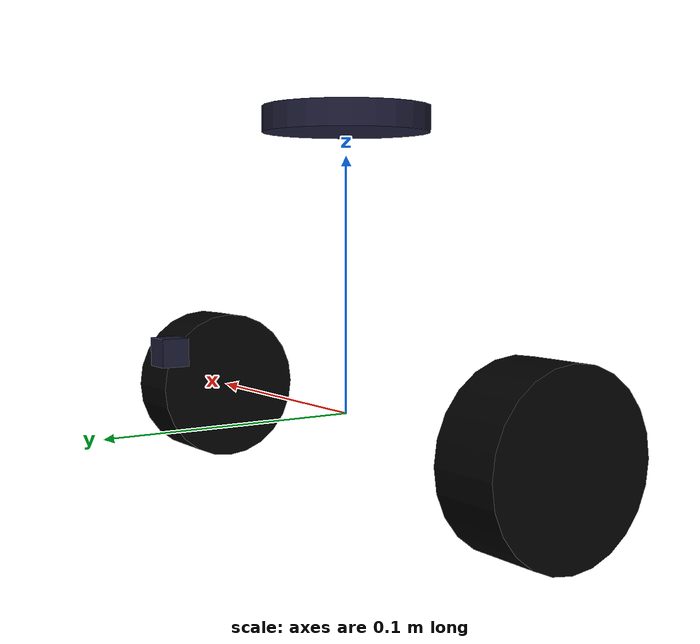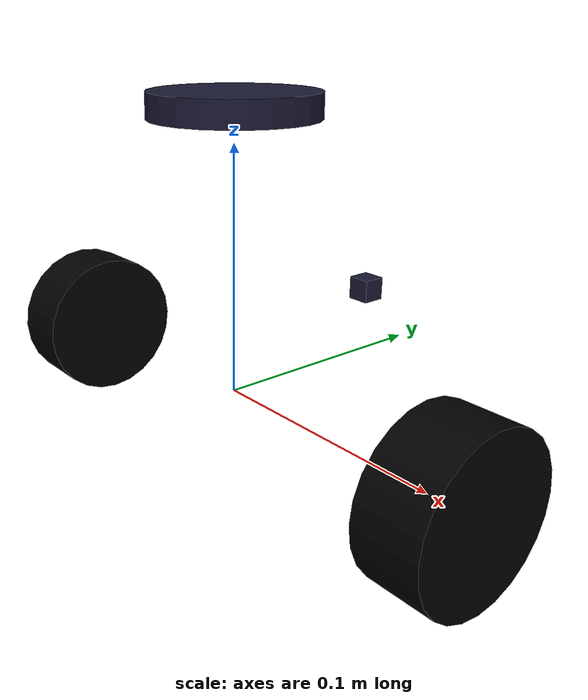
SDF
<?xml version='1.0'?>
<sdf version='1.4'>
	<model name="lilnavi">

		<static>false</static>

		<link name='chassis'>
			<pose>0 0 0 0 0 0</pose>

			<inertial>
				<mass>10</mass>
				<inertia>
					<ixx>0.290179</ixx>
					<iyy>0.355055</iyy>
					<izz>0.400689</izz>
				</inertia>
			</inertial>

			<collision name='collision'>
				<geometry>
					<box>
						<size>.19 .04 .04</size>
					</box>
				</geometry>
			</collision>

			<visual name='visual'>
				<geometry>
					<box>
						<size>.19 .04 .04</size>
					</box>
				</geometry>
				<material> <!-- material -->
					<ambient>77 0 255 1</ambient>
					<diffuse>77 0 255 1</diffuse>
					<specular>0 0 0 0</specular>
					<emissive>0 0 0 1</emissive>
				</material> <!--material -->
			</visual>

			<collision name='baseplate_collision'>
				<pose>0 0 0.022 0 0 0</pose>
				<geometry>
					<box>
						<size>.19 .19 .004</size>
					</box>
				</geometry>
			</collision>

			<visual name='baseplate_visual'>
				<pose>0 0 0.022 0 0 0</pose>
				<geometry>
					<box>
						<size>.19 .19 .004</size>
					</box>
				</geometry>
				<material> <!-- material -->
					<ambient>255 0 0 1</ambient>
					<diffuse>255 0 0 1</diffuse>
					<specular>0 0 0 0</specular>
					<emissive>0 0 0 1</emissive>
				</material> <!--material -->
			</visual>

			<collision name='mid_collision'>
				<pose>0 0 0.0515 0 0 0</pose>
				<geometry>
					<box>
						<size>.12 .12 .055</size>
					</box>
				</geometry>
			</collision>

			<visual name='mid_visual'>
				<pose>0 0 0.0515 0 0 0</pose>
				<geometry>
					<box>
						<size>.12 .12 .055</size>
					</box>
				</geometry>
				<material> <!-- material -->
					<ambient>238 238 81 1</ambient>
					<diffuse>238 238 81 1</diffuse>
					<specular>0 0 0 0</specular>
					<emissive>0 0 0 1</emissive>
				</material> <!--material -->
			</visual>

			<collision name='casterfront_collision'>
				<pose>0 0.0775 0.005 0 0 0</pose>
				<geometry>
					<box>
						<size>0.025 0.025 0.03</size>
					</box>
				</geometry>
			</collision>

			<visual name='casterfront_visual'>
				<pose>0 0.0775 0.005 0 0 0</pose>
				<geometry>
					<box>
						<size>0.025 0.025 0.03</size>
					</box>
				</geometry>
				<material> <!-- material -->
					<ambient>255 183 0 1</ambient>
					<diffuse>255 183 0 1</diffuse>
					<specular>0 0 0 0</specular>
					<emissive>0 0 0 1</emissive>
				</material> <!--material -->
			</visual>

			<collision name='casterwheelfront_collision'>
				<pose>0 0.0775 -0.010 0 0 0</pose>
				<geometry>
					<sphere>
						<radius>0.0225</radius>
					</sphere>
				</geometry>

				<surface>
					<friction>
						<ode>
							<mu>0</mu>
							<mu2>0</mu2>
							<slip1>1.0</slip1>
							<slip2>1.0</slip2>
						</ode>
					</friction>
				</surface>
			</collision>

			<visual name='casterwheelfront_visual'>
				<pose>0 0.0775 -0.010 0 0 0</pose>
				<geometry>
					<sphere>
						<radius>0.0225</radius>
					</sphere>
				</geometry>
				<material> <!-- material -->
					<ambient>0 215 255 1</ambient>
					<diffuse>0 215 255 1</diffuse>
					<specular>0 0 0 0</specular>
					<emissive>0 0 0 1</emissive>
				</material> <!--material -->
			</visual>

			<collision name='casterback_collision'>
				<pose>0 -0.0775 0.005 0 0 0</pose>
				<geometry>
					<box>
						<size>0.025 0.025 0.03</size>
					</box>
				</geometry>
			</collision>

			<visual name='casterback_visual'>
				<pose>0 -0.0775 0.005 0 0 0</pose>
				<geometry>
					<box>
						<size>0.025 0.025 0.03</size>
					</box>
				</geometry>
				<material> <!-- material -->
					<ambient>255 183 0 1</ambient>
					<diffuse>255 183 0 1</diffuse>
					<specular>0 0 0 0</specular>
					<emissive>0 0 0 1</emissive>
				</material> <!--material -->
			</visual>

			<collision name='casterwheelback_collision'>
				<pose>0 -0.0775 -0.010 0 0 0</pose>
				<geometry>
					<sphere>
						<radius>0.0225</radius>
					</sphere>
				</geometry>

				<surface>
					<friction>
						<ode>
							<mu>0</mu>
							<mu2>0</mu2>
							<slip1>1.0</slip1>
							<slip2>1.0</slip2>
						</ode>
					</friction>
				</surface>
			</collision>

			<visual name='casterwheelback_visual'>
				<pose>0 -0.0775 -0.010 0 0 0</pose>
				<geometry>
					<sphere>
						<radius>0.0225</radius>
					</sphere>
				</geometry>
				<material> <!-- material -->
					<ambient>0 215 255 1</ambient>
					<diffuse>0 215 255 1</diffuse>
					<specular>0 0 0 0</specular>
					<emissive>0 0 0 1</emissive>
				</material> <!--material -->
			</visual>

			<collision name="lidarsup_collision">
				<pose>0 0 0.092 0 0 0</pose>
				<geometry>
					<cylinder>
						<radius>0.0325</radius>
						<length>0.03</length>
					</cylinder>
				</geometry>
			</collision>

			<visual name="lidarsup_visual">
				<pose>0 0 0.092 0 0 0</pose>
				<geometry>
					<cylinder>
						<radius>0.0325</radius>
						<length>0.03</length>
					</cylinder>
				</geometry>
				<material> <!-- material -->
					<ambient>88 0 255 1</ambient>
					<diffuse>88 0 255 1</diffuse>
					<specular>0 0 0 0</specular>
					<emissive>0 0 0 1</emissive>
				</material> <!--material -->
			</visual>
		</link>

		<link name="left_wheel">
			<pose>-0.1105 0 0 0 1.57 0</pose>

			<inertial>
				<mass>0.895943</mass>
			</inertial>

			<collision name="collision">
				<geometry>
					<cylinder>
						<radius>0.0325</radius>
						<length>0.027</length>
					</cylinder>
				</geometry>
			</collision>

			<visual name="visual">
				<geometry>
					<cylinder>
						<radius>0.0325</radius>
						<length>0.027</length>
					</cylinder>
				</geometry>
				<material> <!-- material -->
					<ambient>0 0 0 1</ambient>
					<diffuse>0 0 0 1</diffuse>
					<specular>0 0 0 0</specular>
					<emissive>0 0 0 1</emissive>
				</material> <!--material -->
			</visual>
		</link>

		<link name="right_wheel">
			<pose>0.1105 0 0 0 1.57 0</pose>

			<inertial>
				<mass>0.895943</mass>
			</inertial>

			<collision name="collision">
				<geometry>
					<cylinder>
						<radius>0.0325</radius>
						<length>0.027</length>
					</cylinder>
				</geometry>
			</collision>

			<visual name="visual">
				<geometry>
					<cylinder>
						<radius>0.0325</radius>
						<length>0.027</length>
					</cylinder>
				</geometry>
				<material> <!-- material -->
					<ambient>0 0 0 1</ambient>
					<diffuse>0 0 0 1</diffuse>
					<specular>0 0 0 0</specular>
					<emissive>0 0 0 1</emissive>
				</material> <!--material -->
			</visual>
		</link>

		<link name="lidar_link">
			<pose>0 0 0.114 0 0 0</pose> <!--Gap of 2mm-->

			<inertial>
				<mass>0.6</mass>
			</inertial>

			<collision name="collision">
				<geometry>
					<cylinder>
						<radius>0.0325</radius>
						<length>0.01</length>
					</cylinder>
				</geometry>
			</collision>

			<visual name="visual">
				<geometry>
					<cylinder>
						<radius>0.0325</radius>
						<length>0.01</length>
					</cylinder>
				</geometry>
				<material> <!-- material -->
					<ambient>0.1 0.1 0.1 1</ambient>
					<diffuse>0.1 0.1 0.2 1</diffuse>
					<specular>0 0 0 0</specular>
					<emissive>0 0 0 1</emissive>
				</material> <!--material -->
			</visual>

			<sensor type="gpu_ray" name="head_hokuyo_sensor">
				<pose>0 0 0 0 0 0</pose>
				<visualize>true</visualize>
				<update_rate>40</update_rate>
				<ray>
					<scan>
						<horizontal>
							<samples>720</samples>
							<resolution>1</resolution>
							<min_angle>-3.14159</min_angle>
							<max_angle>3.14159</max_angle>
						</horizontal>
					</scan>
					<range>
						<min>0.10</min>
						<max>12.0</max>
						<resolution>0.01</resolution>
					</range>
					<noise>
						<type>gaussian</type>
						<mean>0.0</mean>
						<stddev>0.01</stddev>
					</noise>
				</ray>
				<plugin name="gazebo_ros_head_hokuyo_controller" filename="libgazebo_ros_gpu_laser.so">
					<topicName>/laser/scan</topicName>
					<frameName>lidar_link</frameName>
				</plugin>
			</sensor>
		</link>

		<link name="imu_link">
			<pose>0 0.075 0.029 0 0 0</pose> <!--Gap of 2mm-->

			<inertial>
				<mass>0.05</mass>
			</inertial>

			<collision name="collision">
				<geometry>
					<box>
						<size>0.01 0.01 0.01</size>
					</box>
				</geometry>
			</collision>

			<visual name="visual">
				<geometry>
					<box>
						<size>0.01 0.01 0.01</size>
					</box>
				</geometry>
				<material> <!-- material -->
					<ambient>0.1 0.1 0.1 1</ambient>
					<diffuse>0.1 0.1 0.2 1</diffuse>
					<specular>0 0 0 0</specular>
					<emissive>0 0 0 1</emissive>
				</material> <!--material -->
			</visual>

			<gravity>true</gravity>
			<sensor name="imu_sensor" type="imu">
				<always_on>true</always_on>
				<update_rate>100</update_rate>
				<visualize>true</visualize>
				<topic>__default_topic__</topic>
				<plugin filename="libgazebo_ros_imu_sensor.so" name="imu_plugin">
					<topicName>imu</topicName>
					<bodyName>imu_link</bodyName>
					<updateRateHZ>10.0</updateRateHZ>
					<gaussianNoise>0.0</gaussianNoise>
					<xyzOffset>0 0 0</xyzOffset>
					<rpyOffset>0 0 0</rpyOffset>
					<frameName>imu_link</frameName>
					<initialOrientationAsReference>false</initialOrientationAsReference>
				</plugin>
				<pose>0 0 0 0 0 0</pose>
			</sensor>
		</link>

		<joint type="revolute" name="left_wheel_hinge">
			<pose>0 0 0.0155 0 0 0</pose>
			<child>left_wheel</child>
			<parent>chassis</parent>
			<axis>
				<xyz>1 0 0</xyz> <!-- what axis that it going to rotate about-->
			</axis>
		</joint>

		<joint type="revolute" name="right_wheel_hinge">
			<pose>0 0 -0.0155 0 0 0</pose>
			<child>right_wheel</child>
			<parent>chassis</parent>
			<axis>
				<xyz>1 0 0</xyz> <!-- what axis that it going to rotate about-->
			</axis>
		</joint>

		<joint type="fixed" name="lidar_joint">
			<pose>0 0 -0.007 0 0 0</pose>
			<child>lidar_link</child>
			<parent>chassis</parent>
			<axis>
				<xyz>0 0 1</xyz> <!-- what axis that it going to rotate about-->
			</axis>
		</joint>

		<joint type="fixed" name="imu_joint">
			<pose>0 0 -0.005 0 0 0</pose>
			<child>imu_link</child>
			<parent>chassis</parent>
			<axis>
				<xyz>0 0 1</xyz> <!-- what axis that it going to rotate about-->
			</axis>
		</joint>
		<!-- diff drive plugin here-->
		<plugin name="differential_drive_controller" filename="libgazebo_ros_diff_drive.so">
			<legacyMode>false</legacyMode>
			<updateRate>20</updateRate>
			<leftJoint>left_wheel_hinge</leftJoint>
			<rightJoint>right_wheel_hinge</rightJoint>
			<wheelSeparation>0.19</wheelSeparation>
			<wheelDiameter>0.065</wheelDiameter>
			<torque>20</torque>
			<commandTopic>cmd_vel</commandTopic>
			<odometryTopic>odom</odometryTopic>
			<odometryFrame>odom</odometryFrame>
			<robotBaseFrame>chassis</robotBaseFrame>
		</plugin>
		<!-- diff drive plugin here-->
	</model>
</sdf>
